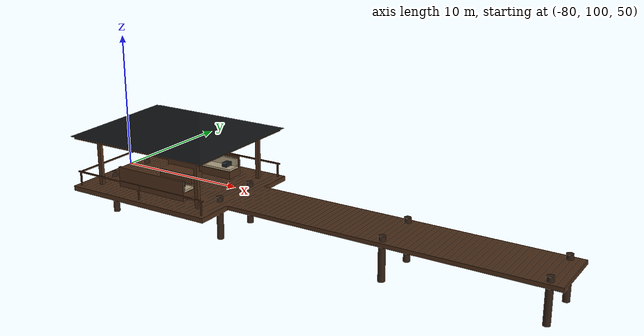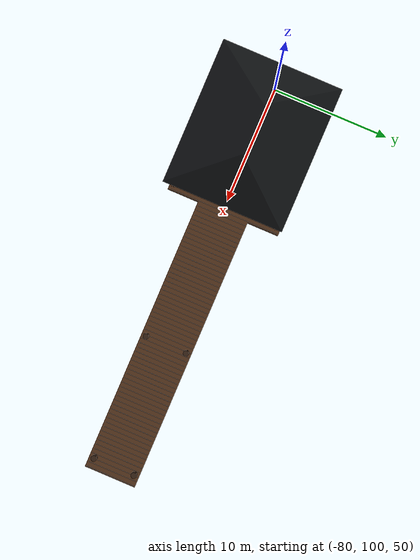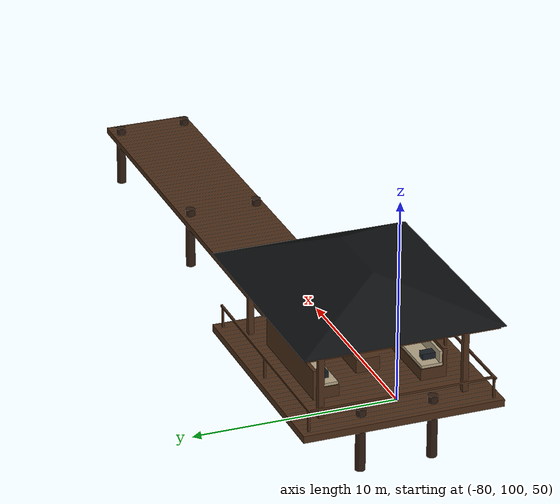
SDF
<?xml version='1.0' encoding='utf-8'?>
<sdf version="1.9">
  <model name="estate_lake_pavilion">
    <static>true</static>
    <link name="structure">
      <visual name="visual_wood">
        <geometry>
          <mesh>
            <uri>model://estate_lake_pavilion/meshes/visual/wood.dae</uri>
          </mesh>
        </geometry>
        <material>
          <ambient>0.3 0.18 0.095 1</ambient>
          <diffuse>0.3 0.18 0.095 1</diffuse>
          <specular>0.15 0.15 0.15 1</specular>
          <pbr>
            <metal>
              <roughness>0.8</roughness>
              <metalness>0.0</metalness>
            </metal>
          </pbr>
        </material>
      </visual>
      <visual name="visual_trunk">
        <geometry>
          <mesh>
            <uri>model://estate_lake_pavilion/meshes/visual/trunk.dae</uri>
          </mesh>
        </geometry>
        <material>
          <ambient>0.19 0.12 0.072 1</ambient>
          <diffuse>0.19 0.12 0.072 1</diffuse>
          <specular>0.15 0.15 0.15 1</specular>
          <pbr>
            <metal>
              <roughness>0.8</roughness>
              <metalness>0.0</metalness>
            </metal>
          </pbr>
        </material>
      </visual>
      <visual name="visual_charcoal">
        <geometry>
          <mesh>
            <uri>model://estate_lake_pavilion/meshes/visual/charcoal.dae</uri>
          </mesh>
        </geometry>
        <material>
          <ambient>0.045 0.054 0.06 1</ambient>
          <diffuse>0.045 0.054 0.06 1</diffuse>
          <specular>0.15 0.15 0.15 1</specular>
          <pbr>
            <metal>
              <roughness>0.8</roughness>
              <metalness>0.0</metalness>
            </metal>
          </pbr>
        </material>
      </visual>
      <visual name="visual_dark_fabric">
        <geometry>
          <mesh>
            <uri>model://estate_lake_pavilion/meshes/visual/dark_fabric.dae</uri>
          </mesh>
        </geometry>
        <material>
          <ambient>0.095 0.12 0.14 1</ambient>
          <diffuse>0.095 0.12 0.14 1</diffuse>
          <specular>0.15 0.15 0.15 1</specular>
          <pbr>
            <metal>
              <roughness>0.8</roughness>
              <metalness>0.0</metalness>
            </metal>
          </pbr>
        </material>
      </visual>
      <visual name="visual_emissive">
        <geometry>
          <mesh>
            <uri>model://estate_lake_pavilion/meshes/visual/emissive.dae</uri>
          </mesh>
        </geometry>
        <material>
          <ambient>0.94 0.73 0.36 1</ambient>
          <diffuse>0.94 0.73 0.36 1</diffuse>
          <specular>0.15 0.15 0.15 1</specular>
          <emissive>0.517 0.4015 0.198 1</emissive>
          <pbr>
            <metal>
              <roughness>0.8</roughness>
              <metalness>0.0</metalness>
            </metal>
          </pbr>
        </material>
      </visual>
      <visual name="visual_fabric">
        <geometry>
          <mesh>
            <uri>model://estate_lake_pavilion/meshes/visual/fabric.dae</uri>
          </mesh>
        </geometry>
        <material>
          <ambient>0.7 0.64 0.52 1</ambient>
          <diffuse>0.7 0.64 0.52 1</diffuse>
          <specular>0.15 0.15 0.15 1</specular>
          <pbr>
            <metal>
              <roughness>0.8</roughness>
              <metalness>0.0</metalness>
            </metal>
          </pbr>
        </material>
      </visual>
      <collision name="dock_platform">
        <geometry>
          <box>
            <size>12 10 0.36</size>
          </box>
        </geometry>
        <pose>-75 100 49.37 0 0 0</pose>
      </collision>
      <collision name="dock_walkway">
        <geometry>
          <box>
            <size>24 4.5 0.3</size>
          </box>
        </geometry>
        <pose>-57 100 49.4 0 0 0</pose>
      </collision>
      <collision name="dock_pile_-80_98.2">
        <geometry>
          <cylinder>
            <radius>0.25</radius>
            <length>3.2</length>
          </cylinder>
        </geometry>
        <pose>-80 98.2 48.3 0 0 0</pose>
      </collision>
      <collision name="dock_pile_-80_101.8">
        <geometry>
          <cylinder>
            <radius>0.25</radius>
            <length>3.2</length>
          </cylinder>
        </geometry>
        <pose>-80 101.8 48.3 0 0 0</pose>
      </collision>
      <collision name="dock_pile_-70_98.2">
        <geometry>
          <cylinder>
            <radius>0.25</radius>
            <length>3.2</length>
          </cylinder>
        </geometry>
        <pose>-70 98.2 48.3 0 0 0</pose>
      </collision>
      <collision name="dock_pile_-70_101.8">
        <geometry>
          <cylinder>
            <radius>0.25</radius>
            <length>3.2</length>
          </cylinder>
        </geometry>
        <pose>-70 101.8 48.3 0 0 0</pose>
      </collision>
      <collision name="dock_pile_-57_98.2">
        <geometry>
          <cylinder>
            <radius>0.25</radius>
            <length>3.2</length>
          </cylinder>
        </geometry>
        <pose>-57 98.2 48.3 0 0 0</pose>
      </collision>
      <collision name="dock_pile_-57_101.8">
        <geometry>
          <cylinder>
            <radius>0.25</radius>
            <length>3.2</length>
          </cylinder>
        </geometry>
        <pose>-57 101.8 48.3 0 0 0</pose>
      </collision>
      <collision name="dock_pile_-46_98.2">
        <geometry>
          <cylinder>
            <radius>0.25</radius>
            <length>3.2</length>
          </cylinder>
        </geometry>
        <pose>-46 98.2 48.3 0 0 0</pose>
      </collision>
      <collision name="dock_pile_-46_101.8">
        <geometry>
          <cylinder>
            <radius>0.25</radius>
            <length>3.2</length>
          </cylinder>
        </geometry>
        <pose>-46 101.8 48.3 0 0 0</pose>
      </collision>
      <collision name="pavilion_post_-4.5_-3.6">
        <geometry>
          <box>
            <size>0.28 0.28 3.8</size>
          </box>
        </geometry>
        <pose>-79.5 96.4 51.45 0 0 0</pose>
      </collision>
      <collision name="pavilion_post_-4.5_3.6">
        <geometry>
          <box>
            <size>0.28 0.28 3.8</size>
          </box>
        </geometry>
        <pose>-79.5 103.6 51.45 0 0 0</pose>
      </collision>
      <collision name="pavilion_post_4.5_-3.6">
        <geometry>
          <box>
            <size>0.28 0.28 3.8</size>
          </box>
        </geometry>
        <pose>-70.5 96.4 51.45 0 0 0</pose>
      </collision>
      <collision name="pavilion_post_4.5_3.6">
        <geometry>
          <box>
            <size>0.28 0.28 3.8</size>
          </box>
        </geometry>
        <pose>-70.5 103.6 51.45 0 0 0</pose>
      </collision>
      <collision name="pavilion_eave">
        <geometry>
          <box>
            <size>11.5 9.6 0.16</size>
          </box>
        </geometry>
        <pose>-75 100 53.23 0 0 0</pose>
      </collision>
      <collision name="pavilion_hipped_roof">
        <geometry>
          <mesh>
            <uri>model://estate_lake_pavilion/meshes/collision/pavilion_hipped_roof.dae</uri>
          </mesh>
        </geometry>
      </collision>
      <collision name="pavilion_seat_-1_base">
        <geometry>
          <box>
            <size>6 1.3 0.58</size>
          </box>
        </geometry>
        <pose>-75 97.3 49.9 0 0 3.14159</pose>
      </collision>
      <collision name="pavilion_seat_-1_back">
        <geometry>
          <box>
            <size>6 0.19 1</size>
          </box>
        </geometry>
        <pose>-75 96.74 50.59 0 0 3.14159</pose>
      </collision>
      <collision name="pavilion_seat_1_base">
        <geometry>
          <box>
            <size>6 1.3 0.58</size>
          </box>
        </geometry>
        <pose>-75 102.7 49.9 0 0 0</pose>
      </collision>
      <collision name="pavilion_seat_1_back">
        <geometry>
          <box>
            <size>6 0.19 1</size>
          </box>
        </geometry>
        <pose>-75 103.26 50.59 0 0 0</pose>
      </collision>
      <collision name="pavilion_table">
        <geometry>
          <box>
            <size>3 1.2 0.7</size>
          </box>
        </geometry>
        <pose>-75 100 50.1 0 0 0</pose>
      </collision>
      <collision name="dock_side_rail_95.4">
        <geometry>
          <box>
            <size>11.6 0.1 0.1</size>
          </box>
        </geometry>
        <pose>-75 95.4 50.6 0 0 0</pose>
      </collision>
      <collision name="dock_rail_post_-80.6_95.4">
        <geometry>
          <box>
            <size>0.1 0.1 1</size>
          </box>
        </geometry>
        <pose>-80.6 95.4 50.05 0 0 0</pose>
      </collision>
      <collision name="dock_rail_post_-75_95.4">
        <geometry>
          <box>
            <size>0.1 0.1 1</size>
          </box>
        </geometry>
        <pose>-75 95.4 50.05 0 0 0</pose>
      </collision>
      <collision name="dock_rail_post_-69.4_95.4">
        <geometry>
          <box>
            <size>0.1 0.1 1</size>
          </box>
        </geometry>
        <pose>-69.4 95.4 50.05 0 0 0</pose>
      </collision>
      <collision name="dock_side_rail_104.6">
        <geometry>
          <box>
            <size>11.6 0.1 0.1</size>
          </box>
        </geometry>
        <pose>-75 104.6 50.6 0 0 0</pose>
      </collision>
      <collision name="dock_rail_post_-80.6_104.6">
        <geometry>
          <box>
            <size>0.1 0.1 1</size>
          </box>
        </geometry>
        <pose>-80.6 104.6 50.05 0 0 0</pose>
      </collision>
      <collision name="dock_rail_post_-75_104.6">
        <geometry>
          <box>
            <size>0.1 0.1 1</size>
          </box>
        </geometry>
        <pose>-75 104.6 50.05 0 0 0</pose>
      </collision>
      <collision name="dock_rail_post_-69.4_104.6">
        <geometry>
          <box>
            <size>0.1 0.1 1</size>
          </box>
        </geometry>
        <pose>-69.4 104.6 50.05 0 0 0</pose>
      </collision>
      <collision name="dock_west_rail">
        <geometry>
          <box>
            <size>0.1 9.2 0.1</size>
          </box>
        </geometry>
        <pose>-80.6 100 50.6 0 0 0</pose>
      </collision>
    </link>
  </model>
</sdf>
